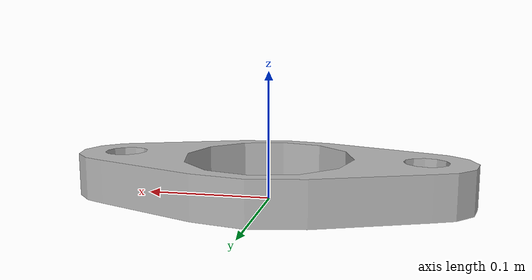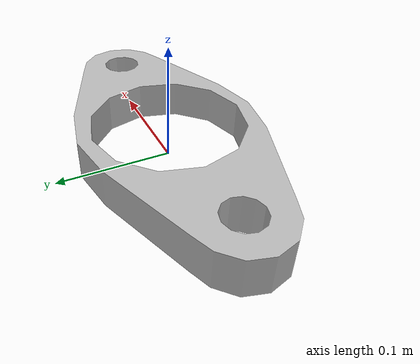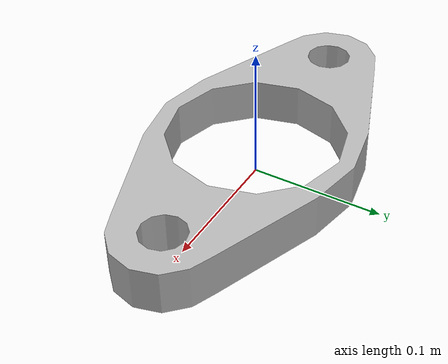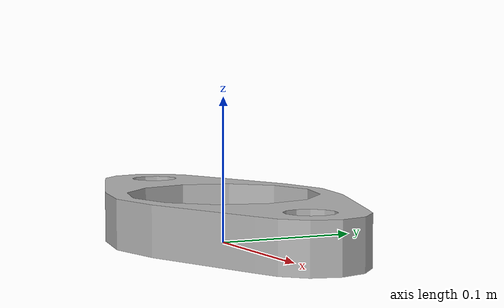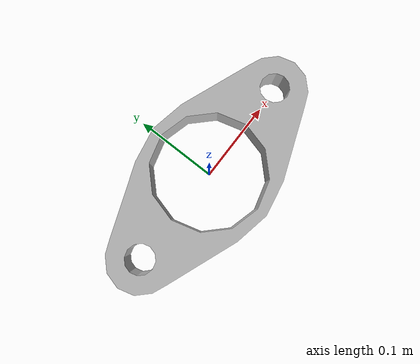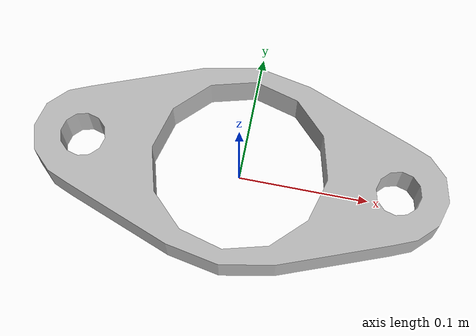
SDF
<?xml version="1.0" ?>
<sdf version="1.6">
  <model name="gasket_part">
    <link name="link">
      <inertial>
        <pose>0 0 0.016955 0 0 0</pose>
        <mass>0.5</mass>
        <inertia>
          <ixx>0.0010728614</ixx>
          <ixy>0</ixy>
          <ixz>0</ixz>
          <iyy>0.00416707602</iyy>
          <iyz>0</iyz>
          <izz>0.00514411341</izz>
        </inertia>
      </inertial>

      <collision name="collision">
        <pose>0 0 0.016955 0 0 0</pose>
        <geometry>
          <box>
            <size>0.31442 0.15684 0.03391</size>
          </box>
        </geometry>
      </collision>

      <visual name="visual">
         <geometry>
           <mesh>
             <uri>model://gasket_part/meshes/gasket.dae</uri>
           </mesh>
         </geometry>
        <material>
          <script>
            <uri>model://arm_part/materials/scripts</uri>
            <uri>model://arm_part/materials/textures</uri>
            <name>ArmPart/Diffuse</name>
          </script>
        </material>
       </visual>
    </link>
  </model>
</sdf>
